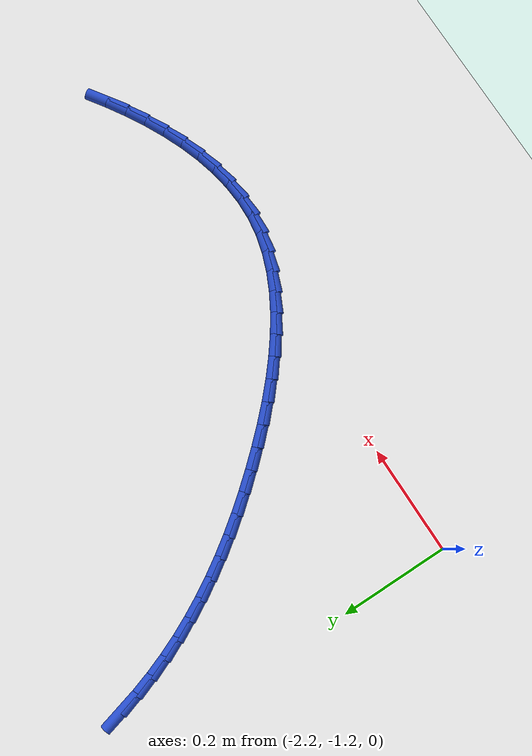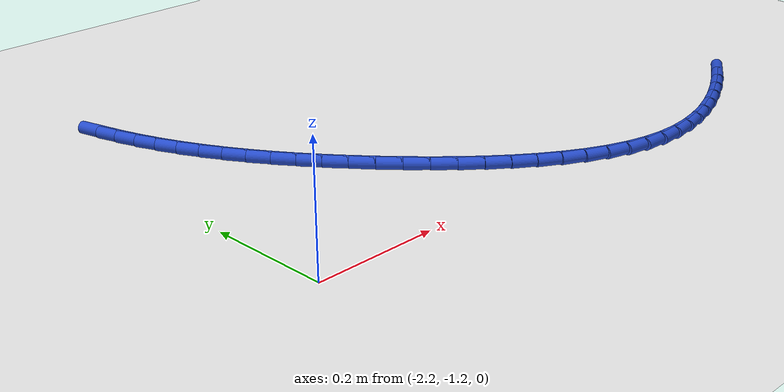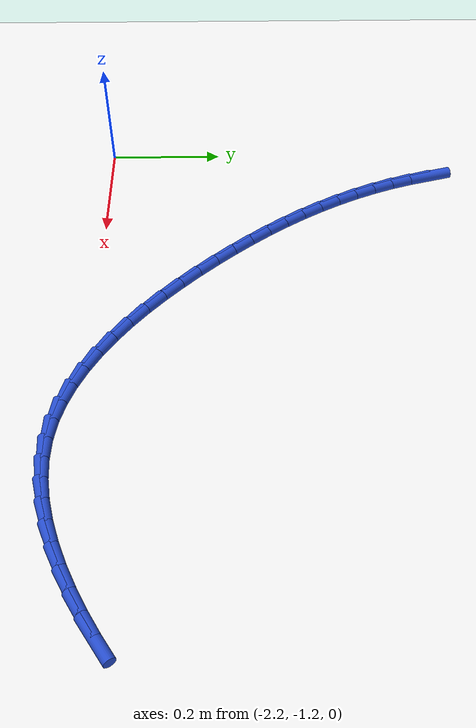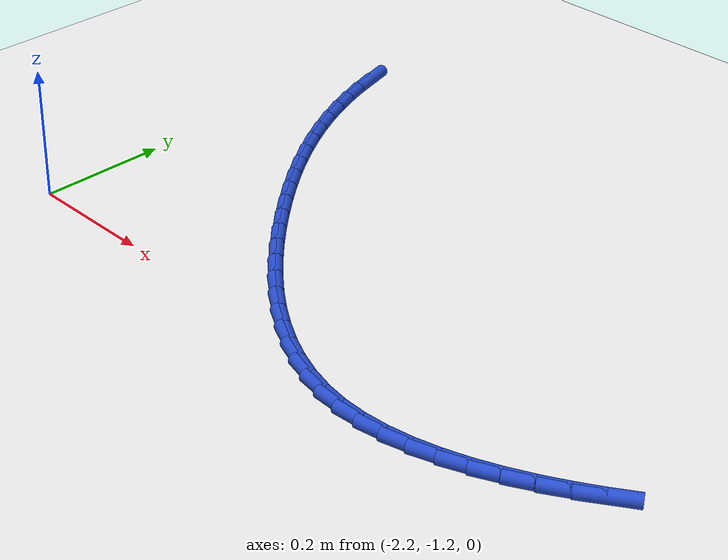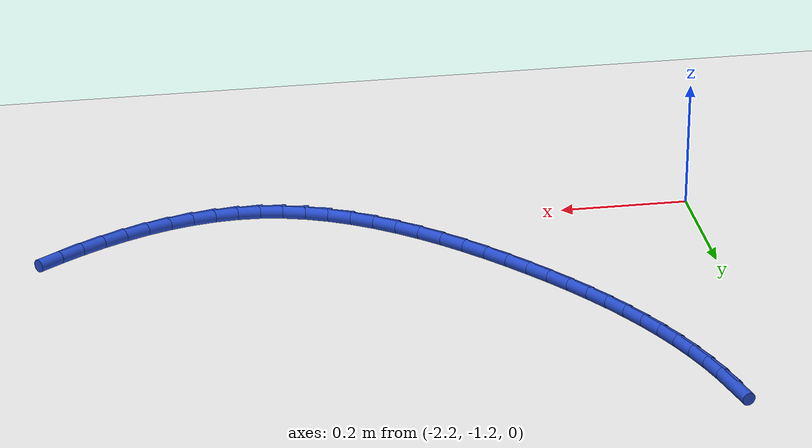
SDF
<sdf version="1.6">
 <world name="default">
  <model name="ground_plane">
   <static>1</static>
   <link name="link">
    <collision name="collision">
     <geometry><plane><normal>0 0 1</normal><size>100 100</size></plane></geometry>
     <surface><friction><ode><mu>100</mu><mu2>50</mu2></ode></friction></surface>
    </collision>
    <visual name="visual">
     <cast_shadows>0</cast_shadows>
     <geometry><plane><normal>0 0 1</normal><size>100 100</size></plane></geometry>
     <material>
      <script><uri>file://media/materials/scripts/gazebo.material</uri><name>Gazebo/WhiteGlow</name></script>
     </material>
    </visual>
   </link>
  </model>
  <model name="line">
   <link name="link_118">
    <pose>-2.127415039895862 -0.6019512898214768 0.01 0 1.57 -1.311565521738106</pose>
    <collision name="collision">
     <geometry><cylinder><radius>0.01</radius><length>0.08</length></cylinder></geometry>
    </collision>
    <visual name="visual">
     <material>
      <script><name>Gazebo/Blue</name><uri>file://media/materials/scripts/gazebo.material</uri></script>
     </material>
     <geometry><cylinder><radius>0.01</radius><length>0.08</length></cylinder></geometry>
    </visual>
   </link>
   <link name="link_119">
    <pose>-2.117731223194247 -0.6384666999622977 0.01 0 1.57 -1.262136194217149</pose>
    <collision name="collision">
     <geometry><cylinder><radius>0.01</radius><length>0.08</length></cylinder></geometry>
    </collision>
    <visual name="visual">
     <material>
      <script><name>Gazebo/Blue</name><uri>file://media/materials/scripts/gazebo.material</uri></script>
     </material>
     <geometry><cylinder><radius>0.01</radius><length>0.08</length></cylinder></geometry>
    </visual>
   </link>
   <link name="link_120">
    <pose>-2.106327288109012 -0.6742324422601524 0.01 0 1.57 -1.2138260243344792</pose>
    <collision name="collision">
     <geometry><cylinder><radius>0.01</radius><length>0.08</length></cylinder></geometry>
    </collision>
    <visual name="visual">
     <material>
      <script><name>Gazebo/Blue</name><uri>file://media/materials/scripts/gazebo.material</uri></script>
     </material>
     <geometry><cylinder><radius>0.01</radius><length>0.08</length></cylinder></geometry>
    </visual>
   </link>
   <link name="link_121">
    <pose>-2.093254892825799 -0.7092839801034492 0.01 0 1.57 -1.1671122860026641</pose>
    <collision name="collision">
     <geometry><cylinder><radius>0.01</radius><length>0.08</length></cylinder></geometry>
    </collision>
    <visual name="visual">
     <material>
      <script><name>Gazebo/Blue</name><uri>file://media/materials/scripts/gazebo.material</uri></script>
     </material>
     <geometry><cylinder><radius>0.01</radius><length>0.08</length></cylinder></geometry>
    </visual>
   </link>
   <link name="link_122">
    <pose>-2.07857046589615 -0.743662258537402 0.01 0 1.57 -1.1222660948687417</pose>
    <collision name="collision">
     <geometry><cylinder><radius>0.01</radius><length>0.08</length></cylinder></geometry>
    </collision>
    <visual name="visual">
     <material>
      <script><name>Gazebo/Blue</name><uri>file://media/materials/scripts/gazebo.material</uri></script>
     </material>
     <geometry><cylinder><radius>0.01</radius><length>0.08</length></cylinder></geometry>
    </visual>
   </link>
   <link name="link_123">
    <pose>-2.062330435871605 -0.7774082226072252 0.01 0 1.57 -1.079507231691902</pose>
    <collision name="collision">
     <geometry><cylinder><radius>0.01</radius><length>0.08</length></cylinder></geometry>
    </collision>
    <visual name="visual">
     <material>
      <script><name>Gazebo/Blue</name><uri>file://media/materials/scripts/gazebo.material</uri></script>
     </material>
     <geometry><cylinder><radius>0.01</radius><length>0.08</length></cylinder></geometry>
    </visual>
   </link>
   <link name="link_124">
    <pose>-2.0445912313037056 -0.8105628173581336 0.01 0 1.57 -1.0390032937074165</pose>
    <collision name="collision">
     <geometry><cylinder><radius>0.01</radius><length>0.08</length></cylinder></geometry>
    </collision>
    <visual name="visual">
     <material>
      <script><name>Gazebo/Blue</name><uri>file://media/materials/scripts/gazebo.material</uri></script>
     </material>
     <geometry><cylinder><radius>0.01</radius><length>0.08</length></cylinder></geometry>
    </visual>
   </link>
   <link name="link_125">
    <pose>-2.0254092807439927 -0.8431669878353415 0.01 0 1.57 -1.0008718545201376</pose>
    <collision name="collision">
     <geometry><cylinder><radius>0.01</radius><length>0.08</length></cylinder></geometry>
    </collision>
    <visual name="visual">
     <material>
      <script><name>Gazebo/Blue</name><uri>file://media/materials/scripts/gazebo.material</uri></script>
     </material>
     <geometry><cylinder><radius>0.01</radius><length>0.08</length></cylinder></geometry>
    </visual>
   </link>
   <link name="link_126">
    <pose>-2.0048410127440084 -0.8752616790840632 0.01 0 1.57 -0.9651848687183774</pose>
    <collision name="collision">
     <geometry><cylinder><radius>0.01</radius><length>0.08</length></cylinder></geometry>
    </collision>
    <visual name="visual">
     <material>
      <script><name>Gazebo/Blue</name><uri>file://media/materials/scripts/gazebo.material</uri></script>
     </material>
     <geometry><cylinder><radius>0.01</radius><length>0.08</length></cylinder></geometry>
    </visual>
   </link>
   <link name="link_127">
    <pose>-1.9829428558552933 -0.9068878361495134 0.01 0 1.57 -0.9319745054513081</pose>
    <collision name="collision">
     <geometry><cylinder><radius>0.01</radius><length>0.08</length></cylinder></geometry>
    </collision>
    <visual name="visual">
     <material>
      <script><name>Gazebo/Blue</name><uri>file://media/materials/scripts/gazebo.material</uri></script>
     </material>
     <geometry><cylinder><radius>0.01</radius><length>0.08</length></cylinder></geometry>
    </visual>
   </link>
   <link name="link_128">
    <pose>-1.9597712386293884 -0.9380864040769059 0.01 0 1.57 -0.9012396647711743</pose>
    <collision name="collision">
     <geometry><cylinder><radius>0.01</radius><length>0.08</length></cylinder></geometry>
    </collision>
    <visual name="visual">
     <material>
      <script><name>Gazebo/Blue</name><uri>file://media/materials/scripts/gazebo.material</uri></script>
     </material>
     <geometry><cylinder><radius>0.01</radius><length>0.08</length></cylinder></geometry>
    </visual>
   </link>
   <link name="link_129">
    <pose>-1.9353825896178365 -0.9688983279114565 0.01 0 1.57 -0.8729525723070245</pose>
    <collision name="collision">
     <geometry><cylinder><radius>0.01</radius><length>0.08</length></cylinder></geometry>
    </collision>
    <visual name="visual">
     <material>
      <script><name>Gazebo/Blue</name><uri>file://media/materials/scripts/gazebo.material</uri></script>
     </material>
     <geometry><cylinder><radius>0.01</radius><length>0.08</length></cylinder></geometry>
    </visual>
   </link>
   <link name="link_130">
    <pose>-1.9098333373721763 -0.9993645526983783 0.01 0 1.57 -0.8466148919757394</pose>
    <collision name="collision">
     <geometry><cylinder><radius>0.01</radius><length>0.08</length></cylinder></geometry>
    </collision>
    <visual name="visual">
     <material>
      <script><name>Gazebo/Blue</name><uri>file://media/materials/scripts/gazebo.material</uri></script>
     </material>
     <geometry><cylinder><radius>0.01</radius><length>0.08</length></cylinder></geometry>
    </visual>
   </link>
   <link name="link_131">
    <pose>-1.883179763556082 -1.0294988428360428 0.01 0 1.57 -0.8181844028265798</pose>
    <collision name="collision">
     <geometry><cylinder><radius>0.01</radius><length>0.08</length></cylinder></geometry>
    </collision>
    <visual name="visual">
     <material>
      <script><name>Gazebo/Blue</name><uri>file://media/materials/scripts/gazebo.material</uri></script>
     </material>
     <geometry><cylinder><radius>0.01</radius><length>0.08</length></cylinder></geometry>
    </visual>
   </link>
   <link name="link_132">
    <pose>-1.8554768829954569 -1.059080542615968 0.01 0 1.57 -0.7852385206414362</pose>
    <collision name="collision">
     <geometry><cylinder><radius>0.01</radius><length>0.08</length></cylinder></geometry>
    </collision>
    <visual name="visual">
     <material>
      <script><name>Gazebo/Blue</name><uri>file://media/materials/scripts/gazebo.material</uri></script>
     </material>
     <geometry><cylinder><radius>0.01</radius><length>0.08</length></cylinder></geometry>
    </visual>
   </link>
   <link name="link_133">
    <pose>-1.826779063126947 -1.0877692011488302 0.01 0 1.57 -0.747159771698884</pose>
    <collision name="collision">
     <geometry><cylinder><radius>0.01</radius><length>0.08</length></cylinder></geometry>
    </collision>
    <visual name="visual">
     <material>
      <script><name>Gazebo/Blue</name><uri>file://media/materials/scripts/gazebo.material</uri></script>
     </material>
     <geometry><cylinder><radius>0.01</radius><length>0.08</length></cylinder></geometry>
    </visual>
   </link>
   <link name="link_134">
    <pose>-1.7971406661813114 -1.115223404230163 0.01 0 1.57 -0.7032072207060918</pose>
    <collision name="collision">
     <geometry><cylinder><radius>0.01</radius><length>0.08</length></cylinder></geometry>
    </collision>
    <visual name="visual">
     <material>
      <script><name>Gazebo/Blue</name><uri>file://media/materials/scripts/gazebo.material</uri></script>
     </material>
     <geometry><cylinder><radius>0.01</radius><length>0.08</length></cylinder></geometry>
    </visual>
   </link>
   <link name="link_135">
    <pose>-1.7666160543893115 -1.1411017376554986 0.01 0 1.57 -0.6524959195471377</pose>
    <collision name="collision">
     <geometry><cylinder><radius>0.01</radius><length>0.08</length></cylinder></geometry>
    </collision>
    <visual name="visual">
     <material>
      <script><name>Gazebo/Blue</name><uri>file://media/materials/scripts/gazebo.material</uri></script>
     </material>
     <geometry><cylinder><radius>0.01</radius><length>0.08</length></cylinder></geometry>
    </visual>
   </link>
   <link name="link_136">
    <pose>-1.7352595899817065 -1.1650627872203712 0.01 0 1.57 -0.5940047167087218</pose>
    <collision name="collision">
     <geometry><cylinder><radius>0.01</radius><length>0.08</length></cylinder></geometry>
    </collision>
    <visual name="visual">
     <material>
      <script><name>Gazebo/Blue</name><uri>file://media/materials/scripts/gazebo.material</uri></script>
     </material>
     <geometry><cylinder><radius>0.01</radius><length>0.08</length></cylinder></geometry>
    </visual>
   </link>
   <link name="link_137">
    <pose>-1.7031256351892576 -1.186765138720313 0.01 0 1.57 -0.5266109856856842</pose>
    <collision name="collision">
     <geometry><cylinder><radius>0.01</radius><length>0.08</length></cylinder></geometry>
    </collision>
    <visual name="visual">
     <material>
      <script><name>Gazebo/Blue</name><uri>file://media/materials/scripts/gazebo.material</uri></script>
     </material>
     <geometry><cylinder><radius>0.01</radius><length>0.08</length></cylinder></geometry>
    </visual>
   </link>
   <link name="link_138">
    <pose>-1.6702685522427247 -1.2058673779508573 0.01 0 1.57 -0.4491745363983814</pose>
    <collision name="collision">
     <geometry><cylinder><radius>0.01</radius><length>0.08</length></cylinder></geometry>
    </collision>
    <visual name="visual">
     <material>
      <script><name>Gazebo/Blue</name><uri>file://media/materials/scripts/gazebo.material</uri></script>
     </material>
     <geometry><cylinder><radius>0.01</radius><length>0.08</length></cylinder></geometry>
    </visual>
   </link>
   <link name="link_139">
    <pose>-1.6367427033728676 -1.2220280907075374 0.01 0 1.57 -0.36069980546920366</pose>
    <collision name="collision">
     <geometry><cylinder><radius>0.01</radius><length>0.08</length></cylinder></geometry>
    </collision>
    <visual name="visual">
     <material>
      <script><name>Gazebo/Blue</name><uri>file://media/materials/scripts/gazebo.material</uri></script>
     </material>
     <geometry><cylinder><radius>0.01</radius><length>0.08</length></cylinder></geometry>
    </visual>
   </link>
   <link name="link_140">
    <pose>-1.6026024508104475 -1.234905862785886 0.01 0 1.57 -0.26060253853428533</pose>
    <collision name="collision">
     <geometry><cylinder><radius>0.01</radius><length>0.08</length></cylinder></geometry>
    </collision>
    <visual name="visual">
     <material>
      <script><name>Gazebo/Blue</name><uri>file://media/materials/scripts/gazebo.material</uri></script>
     </material>
     <geometry><cylinder><radius>0.01</radius><length>0.08</length></cylinder></geometry>
    </visual>
   </link>
   <link name="link_141">
    <pose>-1.5679021567862252 -1.244159279981437 0.01 0 1.57 -0.14913387011189513</pose>
    <collision name="collision">
     <geometry><cylinder><radius>0.01</radius><length>0.08</length></cylinder></geometry>
    </collision>
    <visual name="visual">
     <material>
      <script><name>Gazebo/Blue</name><uri>file://media/materials/scripts/gazebo.material</uri></script>
     </material>
     <geometry><cylinder><radius>0.01</radius><length>0.08</length></cylinder></geometry>
    </visual>
   </link>
   <link name="link_142">
    <pose>-1.5326964098223268 -1.2494489230395398 0.01 0 1.57 -0.03346905906501264</pose>
    <collision name="collision">
     <geometry><cylinder><radius>0.01</radius><length>0.08</length></cylinder></geometry>
    </collision>
    <visual name="visual">
     <material>
      <script><name>Gazebo/Blue</name><uri>file://media/materials/scripts/gazebo.material</uri></script>
     </material>
     <geometry><cylinder><radius>0.01</radius><length>0.08</length></cylinder></geometry>
    </visual>
   </link>
   <link name="link_143">
    <pose>-1.4970632340490908 -1.2506419774151603 0.01 0 1.57 0.07367359488451031</pose>
    <collision name="collision">
     <geometry><cylinder><radius>0.01</radius><length>0.08</length></cylinder></geometry>
    </collision>
    <visual name="visual">
     <material>
      <script><name>Gazebo/Blue</name><uri>file://media/materials/scripts/gazebo.material</uri></script>
     </material>
     <geometry><cylinder><radius>0.01</radius><length>0.08</length></cylinder></geometry>
    </visual>
   </link>
   <link name="link_144">
    <pose>-1.4611241876134786 -1.2479894177434854 0.01 0 1.57 0.1701462992868072</pose>
    <collision name="collision">
     <geometry><cylinder><radius>0.01</radius><length>0.08</length></cylinder></geometry>
    </collision>
    <visual name="visual">
     <material>
      <script><name>Gazebo/Blue</name><uri>file://media/materials/scripts/gazebo.material</uri></script>
     </material>
     <geometry><cylinder><radius>0.01</radius><length>0.08</length></cylinder></geometry>
    </visual>
   </link>
   <link name="link_145">
    <pose>-1.4250055645737123 -1.2417839697233921 0.01 0 1.57 0.2559448251276323</pose>
    <collision name="collision">
     <geometry><cylinder><radius>0.01</radius><length>0.08</length></cylinder></geometry>
    </collision>
    <visual name="visual">
     <material>
      <script><name>Gazebo/Blue</name><uri>file://media/materials/scripts/gazebo.material</uri></script>
     </material>
     <geometry><cylinder><radius>0.01</radius><length>0.08</length></cylinder></geometry>
    </visual>
   </link>
   <link name="link_146">
    <pose>-1.388833658988014 -1.232318359053757 0.01 0 1.57 0.33169184432518306</pose>
    <collision name="collision">
     <geometry><cylinder><radius>0.01</radius><length>0.08</length></cylinder></geometry>
    </collision>
    <visual name="visual">
     <material>
      <script><name>Gazebo/Blue</name><uri>file://media/materials/scripts/gazebo.material</uri></script>
     </material>
     <geometry><cylinder><radius>0.01</radius><length>0.08</length></cylinder></geometry>
    </visual>
   </link>
   <link name="link_147">
    <pose>-1.352734764914606 -1.2198853114334565 0.01 0 1.57 0.39833652043931245</pose>
    <collision name="collision">
     <geometry><cylinder><radius>0.01</radius><length>0.08</length></cylinder></geometry>
    </collision>
    <visual name="visual">
     <material>
      <script><name>Gazebo/Blue</name><uri>file://media/materials/scripts/gazebo.material</uri></script>
     </material>
     <geometry><cylinder><radius>0.01</radius><length>0.08</length></cylinder></geometry>
    </visual>
   </link>
   <link name="link_148">
    <pose>-1.3168351764117114 -1.2047775525613682 0.01 0 1.57 0.4569406326106401</pose>
    <collision name="collision">
     <geometry><cylinder><radius>0.01</radius><length>0.08</length></cylinder></geometry>
    </collision>
    <visual name="visual">
     <material>
      <script><name>Gazebo/Blue</name><uri>file://media/materials/scripts/gazebo.material</uri></script>
     </material>
     <geometry><cylinder><radius>0.01</radius><length>0.08</length></cylinder></geometry>
    </visual>
   </link>
   <link name="link_149">
    <pose>-1.2812611875375524 -1.1872878081363678 0.01 0 1.57 0.508549159065837</pose>
    <collision name="collision">
     <geometry><cylinder><radius>0.01</radius><length>0.08</length></cylinder></geometry>
    </collision>
    <visual name="visual">
     <material>
      <script><name>Gazebo/Blue</name><uri>file://media/materials/scripts/gazebo.material</uri></script>
     </material>
     <geometry><cylinder><radius>0.01</radius><length>0.08</length></cylinder></geometry>
    </visual>
   </link>
   <link name="link_150">
    <pose>-1.246139092350351 -1.1677088038573324 0.01 0 1.57 0.5541236141320527</pose>
    <collision name="collision">
     <geometry><cylinder><radius>0.01</radius><length>0.08</length></cylinder></geometry>
    </collision>
    <visual name="visual">
     <material>
      <script><name>Gazebo/Blue</name><uri>file://media/materials/scripts/gazebo.material</uri></script>
     </material>
     <geometry><cylinder><radius>0.01</radius><length>0.08</length></cylinder></geometry>
    </visual>
   </link>
   <link name="link_151">
    <pose>-1.2115951849083302 -1.1463332654231395 0.01 0 1.57 0.5945153382137234</pose>
    <collision name="collision">
     <geometry><cylinder><radius>0.01</radius><length>0.08</length></cylinder></geometry>
    </collision>
    <visual name="visual">
     <material>
      <script><name>Gazebo/Blue</name><uri>file://media/materials/scripts/gazebo.material</uri></script>
     </material>
     <geometry><cylinder><radius>0.01</radius><length>0.08</length></cylinder></geometry>
    </visual>
   </link>
  </model>
 </world>
</sdf>
